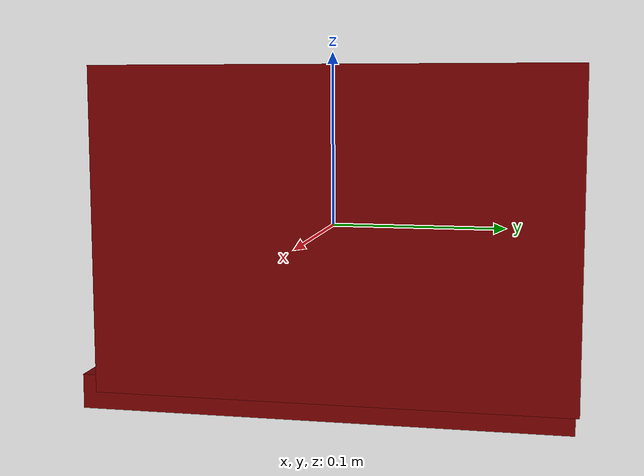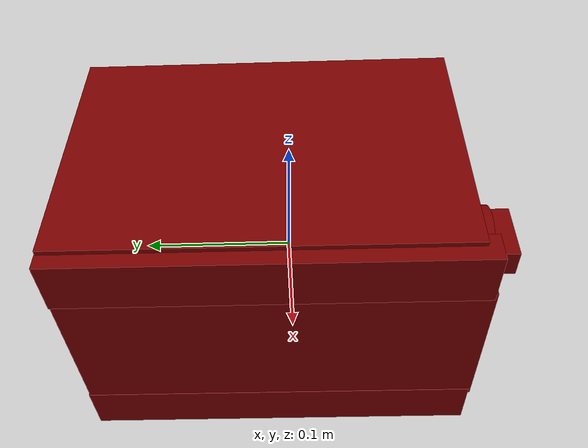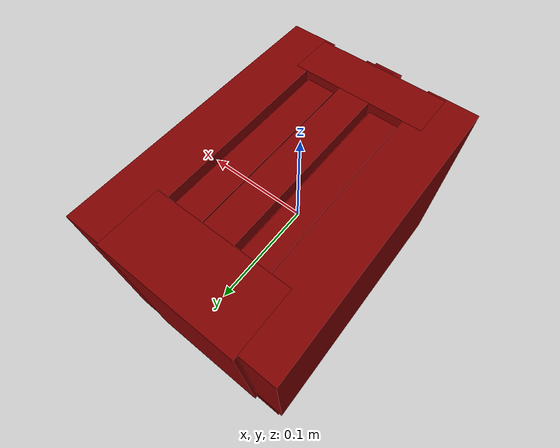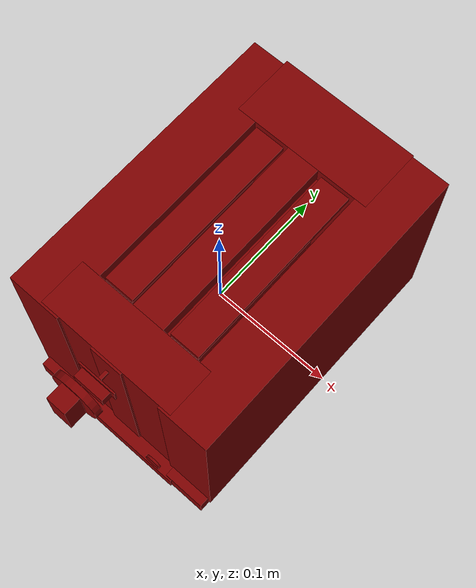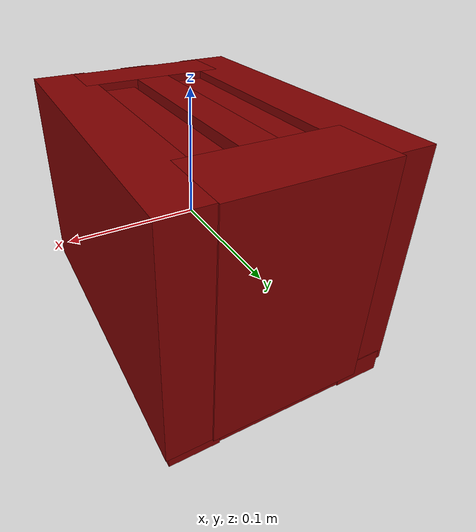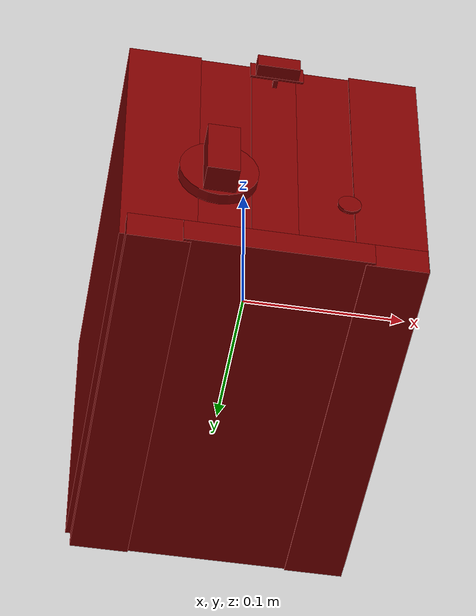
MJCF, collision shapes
<?xml version='1.0' encoding='UTF-8'?>
<mujoco model="model">
  <compiler angle="radian"/>
  <asset>
    <mesh file="visuals/Body001.obj" name="Body001_vis"/>
    <mesh file="visuals/Body002.obj" name="Body002_vis"/>
    <mesh file="visuals/Button001.obj" name="Button001_vis"/>
    <mesh file="visuals/Knob001.obj" name="Knob001_vis"/>
    <mesh file="visuals/Lever001.obj" name="Lever001_vis"/>
    <texture file="visuals/T_BC001.png" name="Body001_material" type="2d"/>
    <material name="Body001_material" rgba="1 1 1 1.0" texture="Body001_material" shininess="0.5" specular="0.33333333333333337"/>
    <texture file="visuals/T_BC001.png" name="Body002_material" type="2d"/>
    <material name="Body002_material" rgba="1 1 1 1.0" texture="Body002_material" shininess="0.5" specular="8"/>
    <texture file="visuals/T_BC001.png" name="Button001_material" type="2d"/>
    <material name="Button001_material" rgba="1 1 1 1.0" texture="Button001_material" shininess="0.5" specular="0.33333333333333337"/>
    <texture file="visuals/T_BC001.png" name="Knob001_material" type="2d"/>
    <material name="Knob001_material" rgba="1 1 1 1.0" texture="Knob001_material" shininess="0.5" specular="0.33333333333333337"/>
    <texture file="visuals/T_BC001.png" name="Lever001_material" type="2d"/>
    <material name="Lever001_material" rgba="1 1 1 1.0" texture="Lever001_material" shininess="0.5" specular="0.33333333333333337"/>
  </asset>
  <default>
    <default class="visual">
      <geom conaffinity="0" contype="0" group="1" type="mesh"/>
    </default>
    <default class="collision">
      <geom group="0" rgba="0.5 0 0 0.5"/>
    </default>
    <default class="spawn">
      <geom group="0" rgba="1 1 1 0.5" contype="0" conaffinity="0"/>
      <site group="0" rgba="1 1 1 0.5"/>
    </default>
    <default class="region">
      <geom group="1" conaffinity="0" contype="0" rgba="0 1 0 0"/>
    </default>
  </default>
  <worldbody>
    <body>
      <body name="object">
        <geom mesh="Body001_vis" type="mesh" solimp="0.998 0.998 0.001" solref="0.001 1" density="100" friction="0.95 0.3 0.1" class="visual" material="Body001_material"/>
        <geom class="collision" type="box" pos="-0.066579 0.013204 0.005124" size="0.022000262513756752 0.1242004856467247 0.08597417920827866" quat="1.0 0.0 0.0 0.0"/>
        <geom class="collision" type="box" pos="-0.067283 0.009351 -0.081480" size="0.018060563132166862 0.12854349613189697 0.009187182411551476" quat="1.0 0.0 0.0 0.0"/>
        <geom class="collision" type="box" pos="0.067650 0.009351 -0.081480" size="0.018060563132166862 0.12854349613189697 0.009187182411551476" quat="1.0 0.0 0.0 0.0"/>
        <geom class="collision" type="box" pos="0.000632 0.008371 -0.082017" size="0.05432577431201935 0.12903128564357758 0.007959311828017235" quat="1.0 0.0 0.0 0.0"/>
        <geom class="collision" type="box" pos="0.067312 0.014390 0.005124" size="0.020953839644789696 0.1253850758075714 0.08597525954246521" quat="1.0 0.0 0.0 0.0"/>
        <geom class="collision" type="box" pos="-0.000192 0.013204 0.005124" size="0.013569707050919533 0.12419869005680084 0.08597539365291595" quat="1.0 0.0 0.0 0.0"/>
        <geom class="collision" type="box" pos="-0.002287 0.114422 0.005124" size="0.058311935514211655 0.02664417214691639 0.0859755277633667" quat="1.0 0.0 0.0 0.0"/>
        <geom class="collision" type="box" pos="-0.002287 -0.089696 0.005124" size="0.058311864733695984 0.019513586536049843 0.08597566187381744" quat="1.0 0.0 0.0 0.0"/>
        <body name="Body002">
          <geom mesh="Body002_vis" type="mesh" solimp="0.998 0.998 0.001" solref="0.001 1" density="100" friction="0.95 0.3 0.1" class="visual" material="Body002_material"/>
          <geom class="collision" type="box" pos="-0.047249 0.008612 0.007751" size="0.003237122669816017 0.0820746049284935 0.06991545855998993" quat="1.0 0.0 0.0 0.0"/>
          <geom class="collision" type="box" pos="-0.013266 0.008612 0.007751" size="0.003237122669816017 0.0820746049284935 0.06991545855998993" quat="1.0 0.0 0.0 0.0"/>
          <geom class="collision" type="box" pos="0.013809 0.008612 0.007751" size="0.002961937105283141 0.0820746049284935 0.06991545855998993" quat="1.0 0.0 0.0 0.0"/>
          <geom class="collision" type="box" pos="0.045434 0.008612 0.007751" size="0.0025283638387918472 0.0820746049284935 0.06991545855998993" quat="1.0 0.0 0.0 0.0"/>
          <geom class="collision" type="box" pos="0.000593 0.008612 -0.056927" size="0.04603833332657814 0.0820746049284935 0.005237564444541931" quat="1.0 0.0 0.0 0.0"/>
          <geom class="collision" type="box" pos="0.027786 0.008612 -0.056927" size="0.005674786400049925 0.0820746049284935 0.005237564444541931" quat="1.0 0.0 0.0 0.0"/>
        </body>
        <body name="Button001">
          <joint axis="0.0 1.0 0.0" pos="0.041053 -0.115121 -0.043146" limited="true" name="Button001_joint" range="0.0 0.0005" type="slide" damping="1" frictionloss="1" armature=".01" stiffness="0.05"/>
          <geom mesh="Button001_vis" type="mesh" solimp="0.998 0.998 0.001" solref="0.001 1" density="100" friction="0.95 0.3 0.1" class="visual" material="Button001_material"/>
          <geom class="collision" type="cylinder" pos="0.040984 -0.121627 -0.043327" size="0.006765109021216631 0.0010240203700959682" quat="0.7071068286895752 0.7071067690849304 1.5700924318127872e-16 5.9269340452702814e-24"/>
        </body>
        <body name="Knob001">
          <joint axis="0.0 -1.0 0.0" pos="-0.035224 -0.130818 -0.032417" limited="true" name="Knob001_joint" range="0.0 5.515240436302081" type="hinge" damping="0.05" armature="0.001"/>
          <geom mesh="Knob001_vis" type="mesh" solimp="0.998 0.998 0.001" solref="0.001 1" density="100" friction="0.95 0.3 0.1" class="visual" material="Knob001_material"/>
          <geom class="collision" type="box" pos="-0.034932 -0.134814 -0.033021" size="0.009380715899169445 0.008410001173615456 0.0193492379039526" quat="1.0 0.0 0.0 0.0"/>
          <geom class="collision" type="cylinder" pos="-0.035045 -0.123442 -0.032605" size="0.023005133494734764 0.003482238855212927" quat="0.7071068286895752 0.7071067690849304 1.5700924318127872e-16 5.9269340452702814e-24"/>
        </body>
        <body name="Lever001">
          <joint axis="0.0 0.0 -1.0" pos="0.000256 -0.098254 0.072569" limited="true" name="Lever001_joint" range="0.0 0.083" type="slide" damping="1" frictionloss="1" armature=".01" stiffness="1" springref="-0.8"/>
          <geom mesh="Lever001_vis" type="mesh" solimp="0.998 0.998 0.001" solref="0.001 1" density="100" friction="0.95 0.3 0.1" class="visual" material="Lever001_material"/>
          <geom class="collision" type="box" pos="0.000000 -0.125540 0.071962" size="0.012952701188623905 0.004051509778946638 0.004895103629678488" quat="1.0 0.0 0.0 0.0" name="lever_knob"/>
          <geom class="collision" type="box" pos="-0.000010 -0.117014 0.071468" size="0.0013755338732153177 0.005228403490036726 0.0013985426630824804" quat="1.0 0.0 0.0 0.0"/>
          <geom class="collision" type="box" pos="0.029670 0.009960 0.083858" size="0.01249999925494194 0.07749733328819275 0.002172788605093956" quat="1.0 0.0 0.0 0.0" name="slotR_floor"/>
          <geom class="collision" type="box" pos="-0.030305 0.010067 0.083858" size="0.01249999925494194 0.07739491760730743 0.002172789303585887" quat="1.0 0.0 0.0 0.0" name="slotL_floor"/>
          <geom class="collision" type="box" pos="0.000000 -0.120599 0.072795" size="0.016182903200387955 0.0007320920703932643 0.006149654742330313" quat="1.0 0.0 0.0 0.0"/>
        </body>
        <geom class="region" name="reg_main" type="box" pos="0.0 0.010105000000000003 3.0000000000002247e-05" size="0.089759 0.133058 0.090583"/>
      </body>
    </body>
  </worldbody>
  <actuator>
    <motor name="Button001_joint_actuator" joint="Button001_joint" gear="0.2"/>
    <motor name="Knob001_joint_actuator" joint="Knob001_joint" gear="10"/>
    <motor name="Lever001_joint_actuator" joint="Lever001_joint" gear="1.5"/>
  </actuator>
</mujoco>
